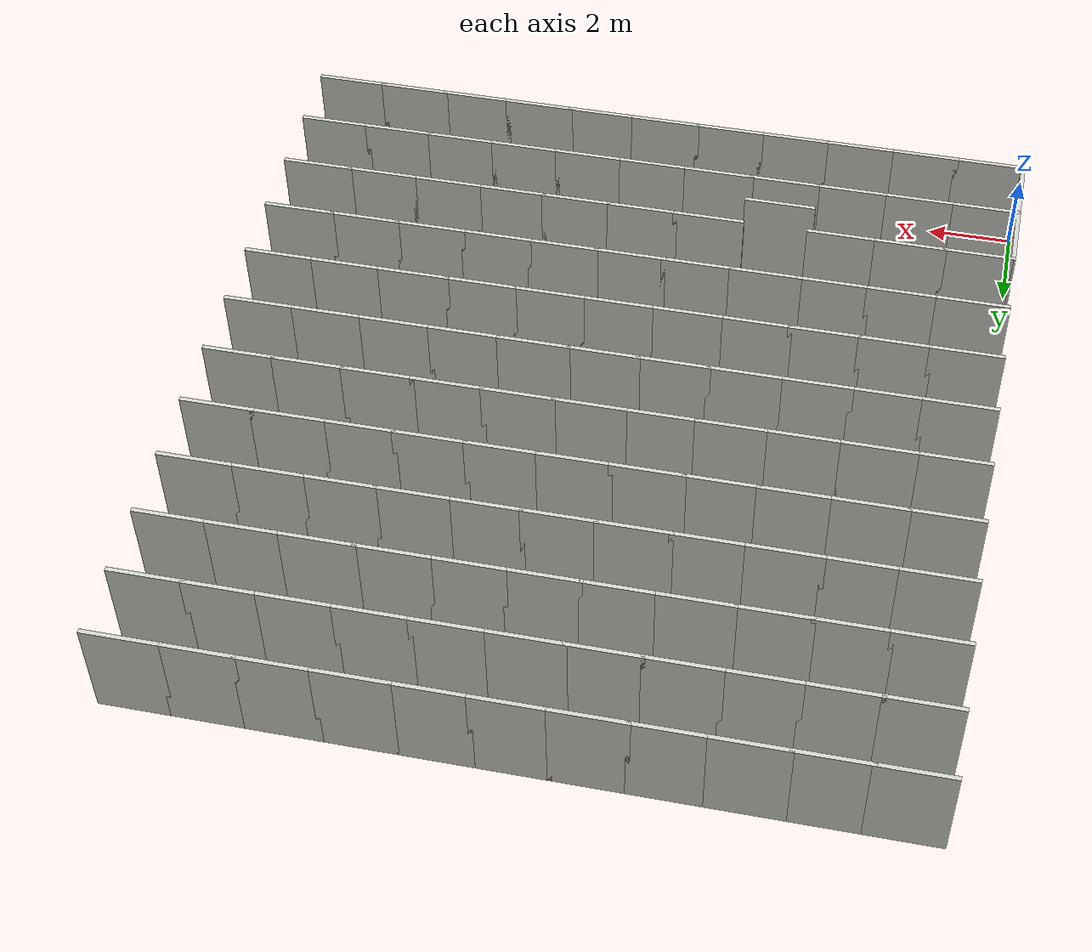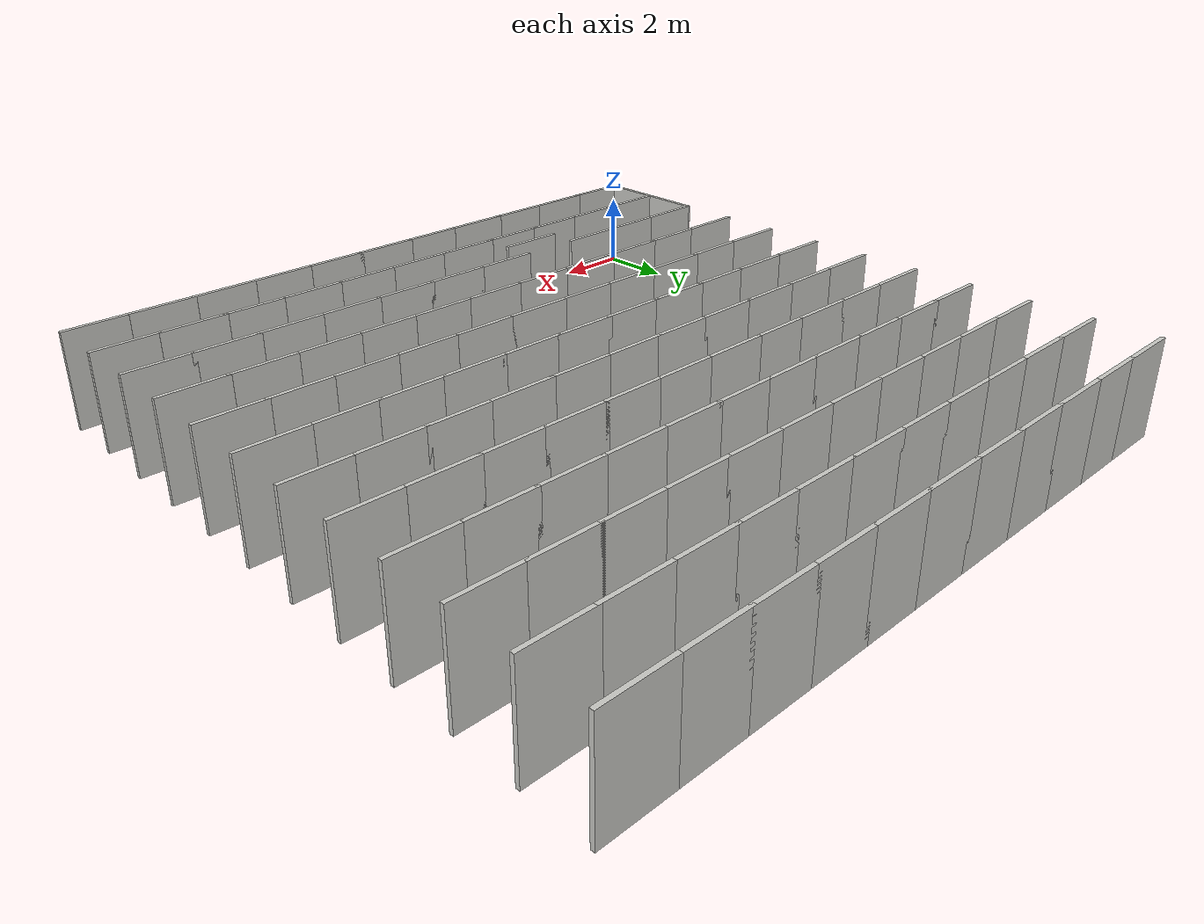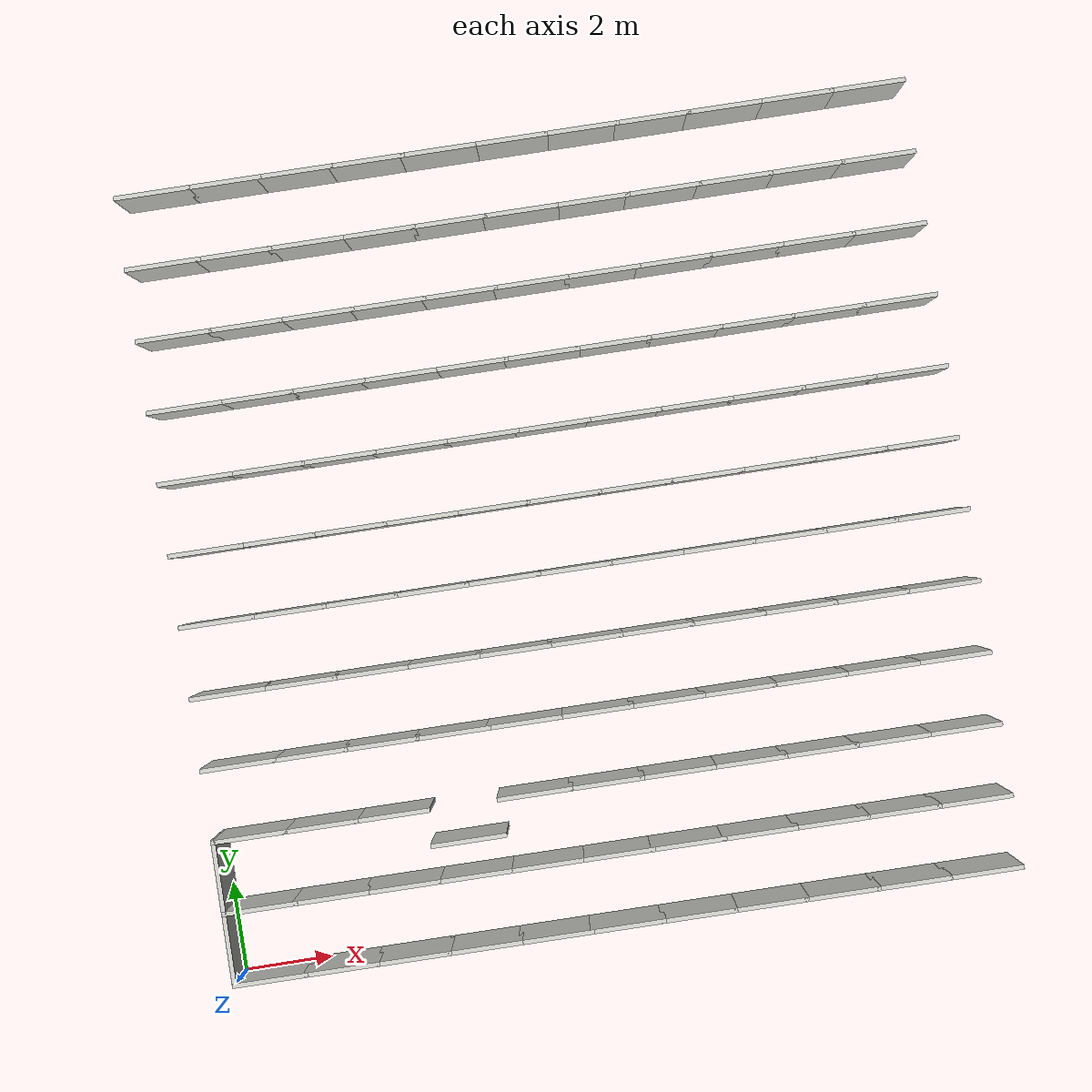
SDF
<?xml version="1.0" ?>
<sdf version="1.5">
  <world name="default">
    <gui>
      <camera name="user_camera">
        <pose>-3.2 0.0 2.05 0 0.33 0.0</pose>
      </camera>
    </gui>
    <scene>
      <sky>
        <clouds>
          <speed>3</speed>
        </clouds>
      </sky>
      <ambient>0.6 0.6 0.6 1</ambient>
      <background>0.5 0.5 0.5 1</background>
      <shadows>0</shadows>
    </scene>

    <!-- A global light source -->
    <include>
      <uri>model://sun_2</uri>
    </include>

    <include>
      <pose>0 0 0 0 0 0</pose>
      <uri>model://base_map</uri>
    </include>

  </world>
</sdf>

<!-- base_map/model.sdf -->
<sdf version="1.5">
  <model name="base_map">

    <include>
      <name>r1_0</name>
      <pose>0.8 0 0 0 0 0</pose>
      <uri>model://wall_unit_1_7</uri>
    </include>
    <include>
      <name>r2_0</name>
      <pose>2.4 0 0 0 0 0</pose>
      <uri>model://wall_unit_1_7</uri>
    </include>
    <include>
      <name>r3_0</name>
      <pose>4 0 0 0 0 0</pose>
      <uri>model://wall_unit_1_7</uri>
    </include>
    <include>
      <name>r4_0</name>
      <pose>5.6 0 0 0 0 0</pose>
      <uri>model://wall_unit_1_7</uri>
    </include>
    <include>
      <name>r5_0</name>
      <pose>7.2 0 0 0 0 0</pose>
      <uri>model://wall_unit_1_7</uri>
    </include>
    <include>
      <name>r6_0</name>
      <pose>8.8 0 0 0 0 0</pose>
      <uri>model://wall_unit_1_7</uri>
    </include>
    <include>
      <name>r7_0</name>
      <pose>10.4 0 0 0 0 0</pose>
      <uri>model://wall_unit_1_7</uri>
    </include>
    <include>
      <name>r8_0</name>
      <pose>12 0 0 0 0 0</pose>
      <uri>model://wall_unit_1_7</uri>
    </include>
    <include>
      <name>r9_0</name>
      <pose>13.6 0 0 0 0 0</pose>
      <uri>model://wall_unit_1_7</uri>
    </include>
    <include>
      <name>r10_0</name>
      <pose>15.2 0 0 0 0 0</pose>
      <uri>model://wall_unit_1_7</uri>
    </include>
    <include>
      <name>r11_0</name>
      <pose>16.8 0 0 0 0 0</pose>
      <uri>model://wall_unit_1_7</uri>
    </include>

    <include>
      <name>r1_1</name>
      <pose>0.8 1.6 0 0 0 0</pose>
      <uri>model://wall_unit_1_7</uri>
    </include>
    <include>
      <name>r2_1</name>
      <pose>2.4 1.6 0 0 0 0</pose>
      <uri>model://wall_unit_1_7</uri>
    </include>
    <include>
      <name>r3_1</name>
      <pose>4 1.6 0 0 0 0</pose>
      <uri>model://wall_unit_1_7</uri>
    </include>
    <include>
      <name>r4_1</name>
      <pose>5.6 1.6 0 0 0 0</pose>
      <uri>model://wall_unit_1_7</uri>
    </include>
    <include>
      <name>r5_1</name>
      <pose>7.2 1.6 0 0 0 0</pose>
      <uri>model://wall_unit_1_7</uri>
    </include>
    <include>
      <name>r6_1</name>
      <pose>8.8 1.6 0 0 0 0</pose>
      <uri>model://wall_unit_1_7</uri>
    </include>
    <include>
      <name>r7_1</name>
      <pose>10.4 1.6 0 0 0 0</pose>
      <uri>model://wall_unit_1_7</uri>
    </include>
    <include>
      <name>r8_1</name>
      <pose>12 1.6 0 0 0 0</pose>
      <uri>model://wall_unit_1_7</uri>
    </include>
    <include>
      <name>r9_1</name>
      <pose>13.6 1.6 0 0 0 0</pose>
      <uri>model://wall_unit_1_7</uri>
    </include>
    <include>
      <name>r10_1</name>
      <pose>15.2 1.6 0 0 0 0</pose>
      <uri>model://wall_unit_1_7</uri>
    </include>
    <include>
      <name>r11_1</name>
      <pose>16.8 1.6 0 0 0 0</pose>
      <uri>model://wall_unit_1_7</uri>
    </include>

    <include>
      <name>r1_2</name>
      <pose>0.8 3.2 0 0 0 0</pose>
      <uri>model://wall_unit_1_7</uri>
    </include>
    <include>
      <name>r2_2</name>
      <pose>2.4 3.2 0 0 0 0</pose>
      <uri>model://wall_unit_1_7</uri>
    </include>
    <include>
      <name>r3_2</name>
      <pose>4 3.2 0 0 0 0</pose>
      <uri>model://wall_unit_1_7</uri>
    </include>
    <include>
      <name>r4_2</name>
      <pose>5.6 2.4 0 0 0 0</pose>
      <uri>model://wall_unit_1_7</uri>
    </include>
    <include>
      <name>r5_2</name>
      <pose>7.2 3.2 0 0 0 0</pose>
      <uri>model://wall_unit_1_7</uri>
    </include>
    <include>
      <name>r6_2</name>
      <pose>8.8 3.2 0 0 0 0</pose>
      <uri>model://wall_unit_1_7</uri>
    </include>
    <include>
      <name>r7_2</name>
      <pose>10.4 3.2 0 0 0 0</pose>
      <uri>model://wall_unit_1_7</uri>
    </include>
    <include>
      <name>r8_2</name>
      <pose>12 3.2 0 0 0 0</pose>
      <uri>model://wall_unit_1_7</uri>
    </include>
    <include>
      <name>r9_2</name>
      <pose>13.6 3.2 0 0 0 0</pose>
      <uri>model://wall_unit_1_7</uri>
    </include>
    <include>
      <name>r10_2</name>
      <pose>15.2 3.2 0 0 0 0</pose>
      <uri>model://wall_unit_1_7</uri>
    </include>
    <include>
      <name>r11_2</name>
      <pose>16.8 3.2 0 0 0 0</pose>
      <uri>model://wall_unit_1_7</uri>
    </include>

    <include>
      <name>r1_3</name>
      <pose>0.8 4.8 0 0 0 0</pose>
      <uri>model://wall_unit_1_7</uri>
    </include>
    <include>
      <name>r2_3</name>
      <pose>2.4 4.8 0 0 0 0</pose>
      <uri>model://wall_unit_1_7</uri>
    </include>
    <include>
      <name>r3_3</name>
      <pose>4 4.8 0 0 0 0</pose>
      <uri>model://wall_unit_1_7</uri>
    </include>
    <include>
      <name>r4_3</name>
      <pose>5.6 4.8 0 0 0 0</pose>
      <uri>model://wall_unit_1_7</uri>
    </include>
    <include>
      <name>r5_3</name>
      <pose>7.2 4.8 0 0 0 0</pose>
      <uri>model://wall_unit_1_7</uri>
    </include>
    <include>
      <name>r6_3</name>
      <pose>8.8 4.8 0 0 0 0</pose>
      <uri>model://wall_unit_1_7</uri>
    </include>
    <include>
      <name>r7_3</name>
      <pose>10.4 4.8 0 0 0 0</pose>
      <uri>model://wall_unit_1_7</uri>
    </include>
    <include>
      <name>r8_3</name>
      <pose>12 4.8 0 0 0 0</pose>
      <uri>model://wall_unit_1_7</uri>
    </include>
    <include>
      <name>r9_3</name>
      <pose>13.6 4.8 0 0 0 0</pose>
      <uri>model://wall_unit_1_7</uri>
    </include>
    <include>
      <name>r10_3</name>
      <pose>15.2 4.8 0 0 0 0</pose>
      <uri>model://wall_unit_1_7</uri>
    </include>
    <include>
      <name>r11_3</name>
      <pose>16.8 4.8 0 0 0 0</pose>
      <uri>model://wall_unit_1_7</uri>
    </include>

    <include>
      <name>r1_4</name>
      <pose>0.8 6.4 0 0 0 0</pose>
      <uri>model://wall_unit_1_7</uri>
    </include>
    <include>
      <name>r2_4</name>
      <pose>2.4 6.4 0 0 0 0</pose>
      <uri>model://wall_unit_1_7</uri>
    </include>
    <include>
      <name>r3_4</name>
      <pose>4 6.4 0 0 0 0</pose>
      <uri>model://wall_unit_1_7</uri>
    </include>
    <include>
      <name>r4_4</name>
      <pose>5.6 6.4 0 0 0 0</pose>
      <uri>model://wall_unit_1_7</uri>
    </include>
    <include>
      <name>r5_4</name>
      <pose>7.2 6.4 0 0 0 0</pose>
      <uri>model://wall_unit_1_7</uri>
    </include>
    <include>
      <name>r6_4</name>
      <pose>8.8 6.4 0 0 0 0</pose>
      <uri>model://wall_unit_1_7</uri>
    </include>
    <include>
      <name>r7_4</name>
      <pose>10.4 6.4 0 0 0 0</pose>
      <uri>model://wall_unit_1_7</uri>
    </include>
    <include>
      <name>r8_4</name>
      <pose>12 6.4 0 0 0 0</pose>
      <uri>model://wall_unit_1_7</uri>
    </include>
    <include>
      <name>r9_4</name>
      <pose>13.6 6.4 0 0 0 0</pose>
      <uri>model://wall_unit_1_7</uri>
    </include>
    <include>
      <name>r10_4</name>
      <pose>15.2 6.4 0 0 0 0</pose>
      <uri>model://wall_unit_1_7</uri>
    </include>
    <include>
      <name>r11_4</name>
      <pose>16.8 6.4 0 0 0 0</pose>
      <uri>model://wall_unit_1_7</uri>
    </include>

    <include>
      <name>r1_5</name>
      <pose>0.8 8 0 0 0 0</pose>
      <uri>model://wall_unit_1_7</uri>
    </include>
    <include>
      <name>r2_5</name>
      <pose>2.4 8 0 0 0 0</pose>
      <uri>model://wall_unit_1_7</uri>
    </include>
    <include>
      <name>r3_5</name>
      <pose>4 8 0 0 0 0</pose>
      <uri>model://wall_unit_1_7</uri>
    </include>
    <include>
      <name>r4_5</name>
      <pose>5.6 8 0 0 0 0</pose>
      <uri>model://wall_unit_1_7</uri>
    </include>
    <include>
      <name>r5_5</name>
      <pose>7.2 8 0 0 0 0</pose>
      <uri>model://wall_unit_1_7</uri>
    </include>
    <include>
      <name>r6_5</name>
      <pose>8.8 8 0 0 0 0</pose>
      <uri>model://wall_unit_1_7</uri>
    </include>
    <include>
      <name>r7_5</name>
      <pose>10.4 8 0 0 0 0</pose>
      <uri>model://wall_unit_1_7</uri>
    </include>
    <include>
      <name>r8_5</name>
      <pose>12 8 0 0 0 0</pose>
      <uri>model://wall_unit_1_7</uri>
    </include>
    <include>
      <name>r9_5</name>
      <pose>13.6 8 0 0 0 0</pose>
      <uri>model://wall_unit_1_7</uri>
    </include>
    <include>
      <name>r10_5</name>
      <pose>15.2 8 0 0 0 0</pose>
      <uri>model://wall_unit_1_7</uri>
    </include>
    <include>
      <name>r11_5</name>
      <pose>16.8 8 0 0 0 0</pose>
      <uri>model://wall_unit_1_7</uri>
    </include>

    <include>
      <name>r1_6</name>
      <pose>0.8 9.6 0 0 0 0</pose>
      <uri>model://wall_unit_1_7</uri>
    </include>
    <include>
      <name>r2_6</name>
      <pose>2.4 9.6 0 0 0 0</pose>
      <uri>model://wall_unit_1_7</uri>
    </include>
    <include>
      <name>r3_6</name>
      <pose>4 9.6 0 0 0 0</pose>
      <uri>model://wall_unit_1_7</uri>
    </include>
    <include>
      <name>r4_6</name>
      <pose>5.6 9.6 0 0 0 0</pose>
      <uri>model://wall_unit_1_7</uri>
    </include>
    <include>
      <name>r5_6</name>
      <pose>7.2 9.6 0 0 0 0</pose>
      <uri>model://wall_unit_1_7</uri>
    </include>
    <include>
      <name>r6_6</name>
      <pose>8.8 9.6 0 0 0 0</pose>
      <uri>model://wall_unit_1_7</uri>
    </include>
    <include>
      <name>r7_6</name>
      <pose>10.4 9.6 0 0 0 0</pose>
      <uri>model://wall_unit_1_7</uri>
    </include>
    <include>
      <name>r8_6</name>
      <pose>12 9.6 0 0 0 0</pose>
      <uri>model://wall_unit_1_7</uri>
    </include>
    <include>
      <name>r9_6</name>
      <pose>13.6 9.6 0 0 0 0</pose>
      <uri>model://wall_unit_1_7</uri>
    </include>
    <include>
      <name>r10_6</name>
      <pose>15.2 9.6 0 0 0 0</pose>
      <uri>model://wall_unit_1_7</uri>
    </include>
    <include>
      <name>r11_6</name>
      <pose>16.8 9.6 0 0 0 0</pose>
      <uri>model://wall_unit_1_7</uri>
    </include>

    <include>
      <name>r1_7</name>
      <pose>0.8 11.2 0 0 0 0</pose>
      <uri>model://wall_unit_1_7</uri>
    </include>
    <include>
      <name>r2_7</name>
      <pose>2.4 11.2 0 0 0 0</pose>
      <uri>model://wall_unit_1_7</uri>
    </include>
    <include>
      <name>r3_7</name>
      <pose>4 11.2 0 0 0 0</pose>
      <uri>model://wall_unit_1_7</uri>
    </include>
    <include>
      <name>r4_7</name>
      <pose>5.6 11.2 0 0 0 0</pose>
      <uri>model://wall_unit_1_7</uri>
    </include>
    <include>
      <name>r5_7</name>
      <pose>7.2 11.2 0 0 0 0</pose>
      <uri>model://wall_unit_1_7</uri>
    </include>
    <include>
      <name>r6_7</name>
      <pose>8.8 11.2 0 0 0 0</pose>
      <uri>model://wall_unit_1_7</uri>
    </include>
    <include>
      <name>r7_7</name>
      <pose>10.4 11.2 0 0 0 0</pose>
      <uri>model://wall_unit_1_7</uri>
    </include>
    <include>
      <name>r8_7</name>
      <pose>12 11.2 0 0 0 0</pose>
      <uri>model://wall_unit_1_7</uri>
    </include>
    <include>
      <name>r9_7</name>
      <pose>13.6 11.2 0 0 0 0</pose>
      <uri>model://wall_unit_1_7</uri>
    </include>
    <include>
      <name>r10_7</name>
      <pose>15.2 11.2 0 0 0 0</pose>
      <uri>model://wall_unit_1_7</uri>
    </include>
    <include>
      <name>r11_7</name>
      <pose>16.8 11.2 0 0 0 0</pose>
      <uri>model://wall_unit_1_7</uri>
    </include>

    <include>
      <name>r1_8</name>
      <pose>0.8 12.8 0 0 0 0</pose>
      <uri>model://wall_unit_1_7</uri>
    </include>
    <include>
      <name>r2_8</name>
      <pose>2.4 12.8 0 0 0 0</pose>
      <uri>model://wall_unit_1_7</uri>
    </include>
    <include>
      <name>r3_8</name>
      <pose>4 12.8 0 0 0 0</pose>
      <uri>model://wall_unit_1_7</uri>
    </include>
    <include>
      <name>r4_8</name>
      <pose>5.6 12.8 0 0 0 0</pose>
      <uri>model://wall_unit_1_7</uri>
    </include>
    <include>
      <name>r5_8</name>
      <pose>7.2 12.8 0 0 0 0</pose>
      <uri>model://wall_unit_1_7</uri>
    </include>
    <include>
      <name>r6_8</name>
      <pose>8.8 12.8 0 0 0 0</pose>
      <uri>model://wall_unit_1_7</uri>
    </include>
    <include>
      <name>r7_8</name>
      <pose>10.4 12.8 0 0 0 0</pose>
      <uri>model://wall_unit_1_7</uri>
    </include>
    <include>
      <name>r8_8</name>
      <pose>12 12.8 0 0 0 0</pose>
      <uri>model://wall_unit_1_7</uri>
    </include>
    <include>
      <name>r9_8</name>
      <pose>13.6 12.8 0 0 0 0</pose>
      <uri>model://wall_unit_1_7</uri>
    </include>
    <include>
      <name>r10_8</name>
      <pose>15.2 12.8 0 0 0 0</pose>
      <uri>model://wall_unit_1_7</uri>
    </include>
    <include>
      <name>r11_8</name>
      <pose>16.8 12.8 0 0 0 0</pose>
      <uri>model://wall_unit_1_7</uri>
    </include>

    <include>
      <name>r1_9</name>
      <pose>0.8 14.4 0 0 0 0</pose>
      <uri>model://wall_unit_1_7</uri>
    </include>
    <include>
      <name>r2_9</name>
      <pose>2.4 14.4 0 0 0 0</pose>
      <uri>model://wall_unit_1_7</uri>
    </include>
    <include>
      <name>r3_9</name>
      <pose>4 14.4 0 0 0 0</pose>
      <uri>model://wall_unit_1_7</uri>
    </include>
    <include>
      <name>r4_9</name>
      <pose>5.6 14.4 0 0 0 0</pose>
      <uri>model://wall_unit_1_7</uri>
    </include>
    <include>
      <name>r5_9</name>
      <pose>7.2 14.4 0 0 0 0</pose>
      <uri>model://wall_unit_1_7</uri>
    </include>
    <include>
      <name>r6_9</name>
      <pose>8.8 14.4 0 0 0 0</pose>
      <uri>model://wall_unit_1_7</uri>
    </include>
    <include>
      <name>r7_9</name>
      <pose>10.4 14.4 0 0 0 0</pose>
      <uri>model://wall_unit_1_7</uri>
    </include>
    <include>
      <name>r8_9</name>
      <pose>12 14.4 0 0 0 0</pose>
      <uri>model://wall_unit_1_7</uri>
    </include>
    <include>
      <name>r9_9</name>
      <pose>13.6 14.4 0 0 0 0</pose>
      <uri>model://wall_unit_1_7</uri>
    </include>
    <include>
      <name>r10_9</name>
      <pose>15.2 14.4 0 0 0 0</pose>
      <uri>model://wall_unit_1_7</uri>
    </include>
    <include>
      <name>r11_9</name>
      <pose>16.8 14.4 0 0 0 0</pose>
      <uri>model://wall_unit_1_7</uri>
    </include>

    <include>
      <name>r1_10</name>
      <pose>0.8 16 0 0 0 0</pose>
      <uri>model://wall_unit_1_7</uri>
    </include>
    <include>
      <name>r2_10</name>
      <pose>2.4 16 0 0 0 0</pose>
      <uri>model://wall_unit_1_7</uri>
    </include>
    <include>
      <name>r3_10</name>
      <pose>4 16 0 0 0 0</pose>
      <uri>model://wall_unit_1_7</uri>
    </include>
    <include>
      <name>r4_10</name>
      <pose>5.6 16 0 0 0 0</pose>
      <uri>model://wall_unit_1_7</uri>
    </include>
    <include>
      <name>r5_10</name>
      <pose>7.2 16 0 0 0 0</pose>
      <uri>model://wall_unit_1_7</uri>
    </include>
    <include>
      <name>r6_10</name>
      <pose>8.8 16 0 0 0 0</pose>
      <uri>model://wall_unit_1_7</uri>
    </include>
    <include>
      <name>r7_10</name>
      <pose>10.4 16 0 0 0 0</pose>
      <uri>model://wall_unit_1_7</uri>
    </include>
    <include>
      <name>r8_10</name>
      <pose>12 16 0 0 0 0</pose>
      <uri>model://wall_unit_1_7</uri>
    </include>
    <include>
      <name>r9_10</name>
      <pose>13.6 16 0 0 0 0</pose>
      <uri>model://wall_unit_1_7</uri>
    </include>
    <include>
      <name>r10_10</name>
      <pose>15.2 16 0 0 0 0</pose>
      <uri>model://wall_unit_1_7</uri>
    </include>
    <include>
      <name>r11_10</name>
      <pose>16.8 16 0 0 0 0</pose>
      <uri>model://wall_unit_1_7</uri>
    </include>

    <include>
      <name>r1_11</name>
      <pose>0.8 17.6 0 0 0 0</pose>
      <uri>model://wall_unit_1_7</uri>
    </include>
    <include>
      <name>r2_11</name>
      <pose>2.4 17.6 0 0 0 0</pose>
      <uri>model://wall_unit_1_7</uri>
    </include>
    <include>
      <name>r3_11</name>
      <pose>4 17.6 0 0 0 0</pose>
      <uri>model://wall_unit_1_7</uri>
    </include>
    <include>
      <name>r4_11</name>
      <pose>5.6 17.6 0 0 0 0</pose>
      <uri>model://wall_unit_1_7</uri>
    </include>
    <include>
      <name>r5_11</name>
      <pose>7.2 17.6 0 0 0 0</pose>
      <uri>model://wall_unit_1_7</uri>
    </include>
    <include>
      <name>r6_11</name>
      <pose>8.8 17.6 0 0 0 0</pose>
      <uri>model://wall_unit_1_7</uri>
    </include>
    <include>
      <name>r7_11</name>
      <pose>10.4 17.6 0 0 0 0</pose>
      <uri>model://wall_unit_1_7</uri>
    </include>
    <include>
      <name>r8_11</name>
      <pose>12 17.6 0 0 0 0</pose>
      <uri>model://wall_unit_1_7</uri>
    </include>
    <include>
      <name>r9_11</name>
      <pose>13.6 17.6 0 0 0 0</pose>
      <uri>model://wall_unit_1_7</uri>
    </include>
    <include>
      <name>r10_11</name>
      <pose>15.2 17.6 0 0 0 0</pose>
      <uri>model://wall_unit_1_7</uri>
    </include>
    <include>
      <name>r11_11</name>
      <pose>16.8 17.6 0 0 0 0</pose>
      <uri>model://wall_unit_1_7</uri>
    </include>

    <include>
      <name>c0_1</name>
      <pose>0 0.8 0 0 0 1.57</pose>
      <uri>model://wall_unit_1_7</uri>
    </include>
    <include>
      <name>c0_2</name>
      <pose>0 2.4 0 0 0 1.57</pose>
      <uri>model://wall_unit_1_7</uri>
    </include>

  </model>
</sdf>

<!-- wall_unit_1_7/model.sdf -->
<sdf version='1.6'>
  <model name='wall_unit_1_7'>
    <pose frame=''>0 0 0 0 -0 0</pose>
    <link name='Wall_45'>
      <collision name='Wall_45_Collision'>
        <geometry>
          <box>
            <size>1.7 0.1 2.5</size>
          </box>
        </geometry>
        <pose frame=''>0 0 1.25 0 -0 0</pose>
      </collision>
      <visual name='Wall_45_Visual'>
        <pose frame=''>0 0 1.25 0 -0 0</pose>
        <geometry>
          <box>
            <size>1.7 0.1 2.5</size>
          </box>
        </geometry>
        <material>
          <script>
            <uri>file://media/materials/scripts/gazebo.material</uri>
            <name>Gazebo/CeilingTiled</name>
          </script>
          <ambient>1 1 1 1</ambient>
        </material>
        <meta>
          <layer>0</layer>
        </meta>
      </visual>
      <pose frame=''>0 0 0 0 -0 0</pose>
    </link>
    <static>1</static>
  </model>
</sdf>
